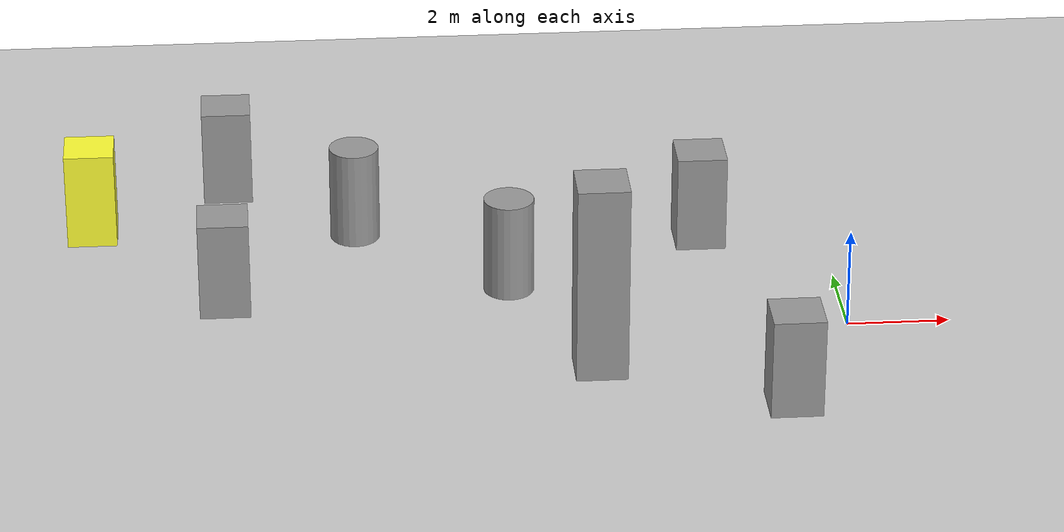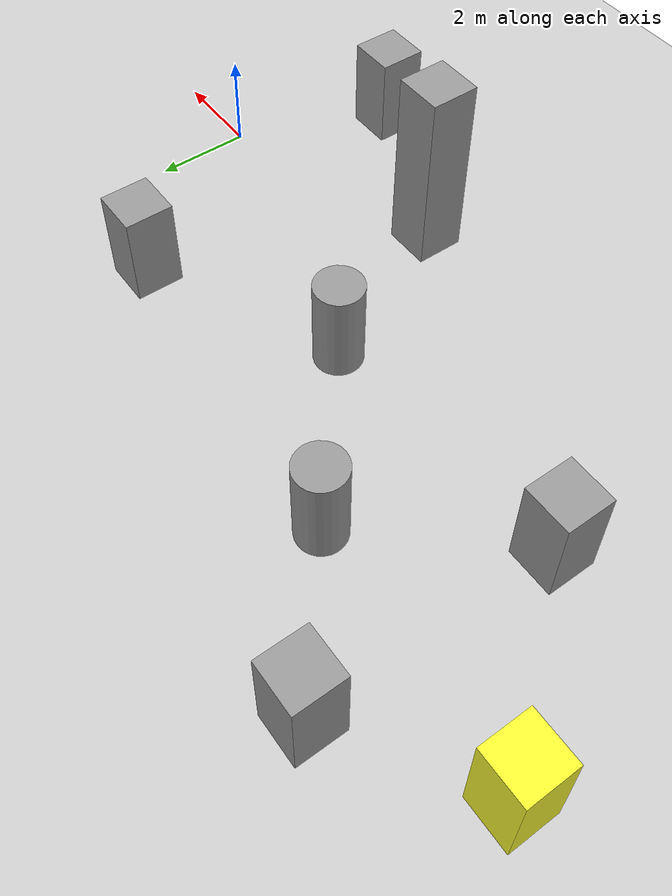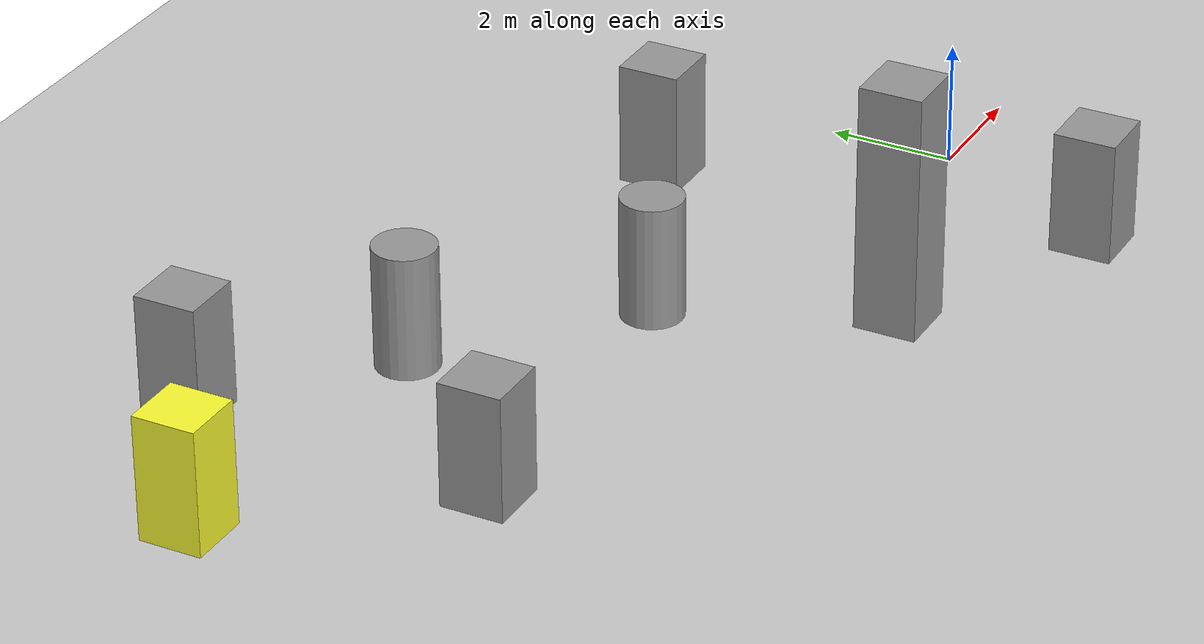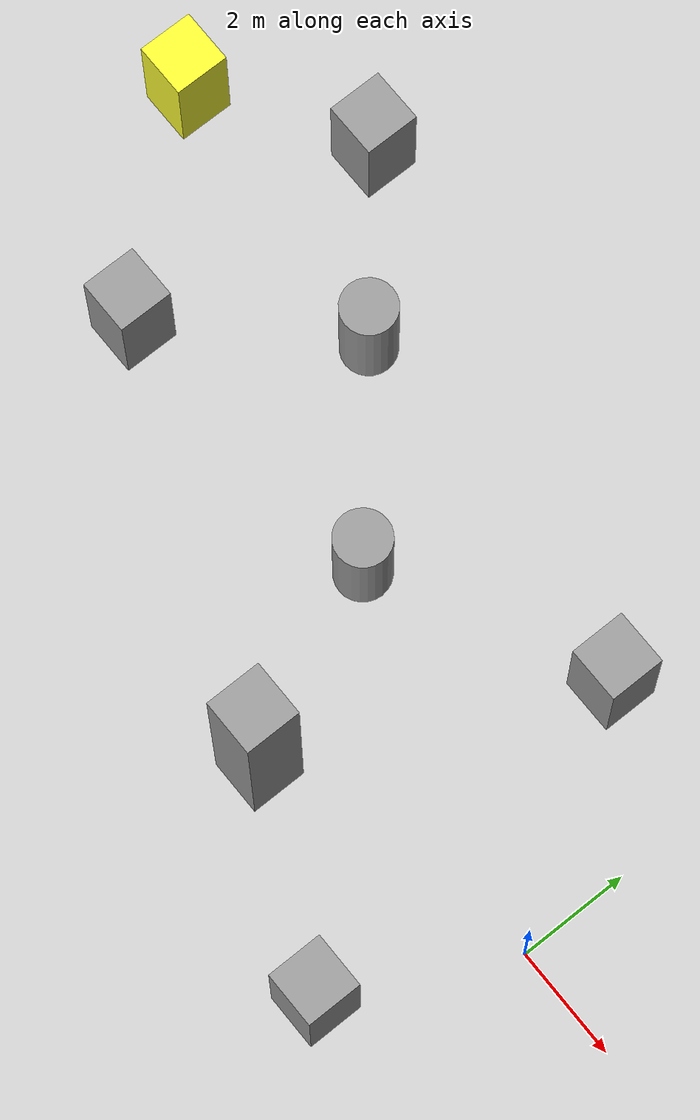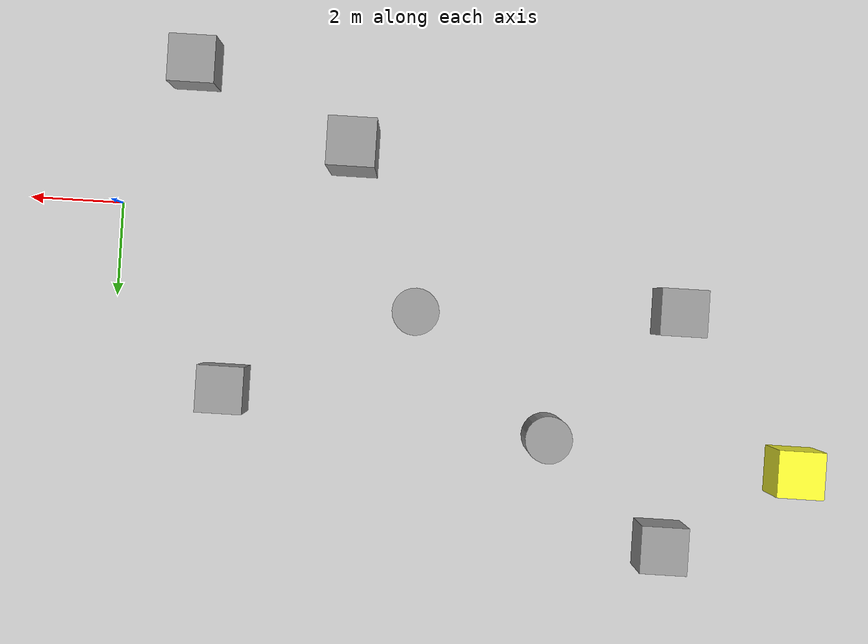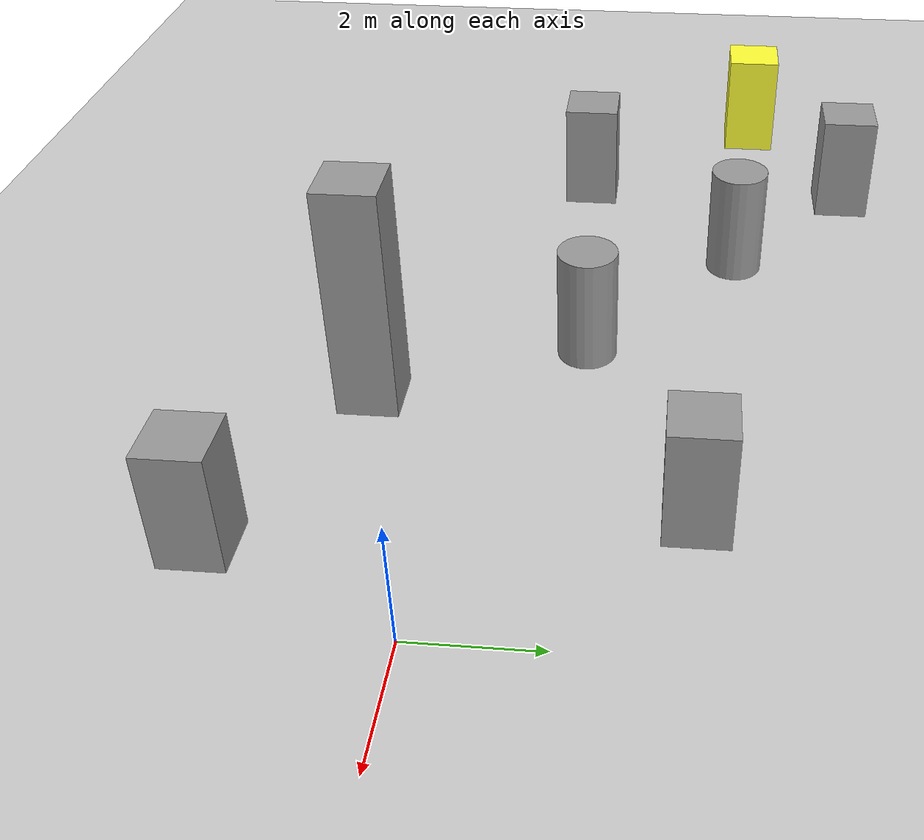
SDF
<sdf version="1.7">
 <world name="default">
  <model name="ground_plane">
   <static>1</static>
   <link name="link">
    <collision name="collision">
     <geometry><plane><normal>0 0 1</normal><size>100 100</size></plane></geometry>
     <surface>
      <contact><collide_bitmask>65535</collide_bitmask></contact>
      <friction><ode><mu>100</mu><mu2>50</mu2></ode></friction>
     </surface>
    </collision>
    <visual name="visual">
     <cast_shadows>0</cast_shadows>
     <geometry><plane><normal>0 0 1</normal><size>100 100</size></plane></geometry>
     <material>
      <script><uri>file://media/materials/scripts/gazebo.material</uri><name>Gazebo/Grey</name></script>
     </material>
    </visual>
   </link>
  </model>
  <model name="box_Z_2m_clone_0_clone_0_clone_0">
   <link name="link">
    <inertial>
     <mass>1</mass>
     <inertia>
      <ixx>0.166667</ixx>
      <ixy>0</ixy>
      <ixz>0</ixz>
      <iyy>0.166667</iyy>
      <iyz>0</iyz>
      <izz>0.166667</izz>
     </inertia>
    </inertial>
    <visual name="visual">
     <geometry><box><size>1 1 2</size></box></geometry>
     <material>
      <script><name>Gazebo/Grey</name><uri>file://media/materials/scripts/gazebo.material</uri></script>
      <shader type="pixel"><normal_map>__default__</normal_map></shader>
      <ambient>0.3 0.3 0.3 1</ambient>
      <diffuse>0.7 0.7 0.7 1</diffuse>
      <specular>0.01 0.01 0.01 1</specular>
      <emissive>0 0 0 1</emissive>
     </material>
    </visual>
    <collision name="collision">
     <geometry><box><size>1 1 2</size></box></geometry>
     <surface>
      <friction>
       <ode><mu>1</mu><mu2>1</mu2><fdir1>0 0 0</fdir1><slip1>0</slip1><slip2>0</slip2></ode>
       <torsional>
        <coefficient>1</coefficient>
        <patch_radius>0</patch_radius>
        <surface_radius>0</surface_radius>
        <use_patch_radius>1</use_patch_radius>
        <ode><slip>0</slip></ode>
       </torsional>
      </friction>
      <bounce><restitution_coefficient>0</restitution_coefficient><threshold>1e+06</threshold></bounce>
      <contact>
       <collide_without_contact>0</collide_without_contact>
       <collide_without_contact_bitmask>1</collide_without_contact_bitmask>
       <collide_bitmask>1</collide_bitmask>
       <ode>
        <soft_cfm>0</soft_cfm>
        <soft_erp>0.2</soft_erp>
        <kp>1e+13</kp>
        <kd>1</kd>
        <max_vel>0.01</max_vel>
        <min_depth>0</min_depth>
       </ode>
       <bullet>
        <split_impulse>1</split_impulse>
        <split_impulse_penetration_threshold>-0.01</split_impulse_penetration_threshold>
        <soft_cfm>0</soft_cfm>
        <soft_erp>0.2</soft_erp>
        <kp>1e+13</kp>
        <kd>1</kd>
       </bullet>
      </contact>
     </surface>
    </collision>
   </link>
   <static>0</static>
   <pose>-1.48121 -3.05259 1 -1e-06 -1e-06 0.000334</pose>
  </model>
  <model name="box_Z_2m_clone_0_clone_0_clone_1">
   <link name="link">
    <inertial>
     <mass>1</mass>
     <inertia>
      <ixx>0.166667</ixx>
      <ixy>0</ixy>
      <ixz>0</ixz>
      <iyy>0.166667</iyy>
      <iyz>0</iyz>
      <izz>0.166667</izz>
     </inertia>
    </inertial>
    <visual name="visual">
     <geometry><box><size>1 1 2</size></box></geometry>
     <material>
      <script><name>Gazebo/Grey</name><uri>file://media/materials/scripts/gazebo.material</uri></script>
      <shader type="pixel"><normal_map>__default__</normal_map></shader>
      <ambient>0.3 0.3 0.3 1</ambient>
      <diffuse>0.7 0.7 0.7 1</diffuse>
      <specular>0.01 0.01 0.01 1</specular>
      <emissive>0 0 0 1</emissive>
     </material>
    </visual>
    <collision name="collision">
     <geometry><box><size>1 1 2</size></box></geometry>
     <surface>
      <friction>
       <ode><mu>1</mu><mu2>1</mu2><fdir1>0 0 0</fdir1><slip1>0</slip1><slip2>0</slip2></ode>
       <torsional>
        <coefficient>1</coefficient>
        <patch_radius>0</patch_radius>
        <surface_radius>0</surface_radius>
        <use_patch_radius>1</use_patch_radius>
        <ode><slip>0</slip></ode>
       </torsional>
      </friction>
      <bounce><restitution_coefficient>0</restitution_coefficient><threshold>1e+06</threshold></bounce>
      <contact>
       <collide_without_contact>0</collide_without_contact>
       <collide_without_contact_bitmask>1</collide_without_contact_bitmask>
       <collide_bitmask>1</collide_bitmask>
       <ode>
        <soft_cfm>0</soft_cfm>
        <soft_erp>0.2</soft_erp>
        <kp>1e+13</kp>
        <kd>1</kd>
        <max_vel>0.01</max_vel>
        <min_depth>0</min_depth>
       </ode>
       <bullet>
        <split_impulse>1</split_impulse>
        <split_impulse_penetration_threshold>-0.01</split_impulse_penetration_threshold>
        <soft_cfm>0</soft_cfm>
        <soft_erp>0.2</soft_erp>
        <kp>1e+13</kp>
        <kd>1</kd>
       </bullet>
      </contact>
     </surface>
    </collision>
   </link>
   <static>0</static>
   <pose>-2.49504 3.85071 1 -1e-06 -1e-06 0.000334</pose>
  </model>
  <model name="box_Z_2m_clone_0_clone_0_clone_2">
   <link name="link">
    <inertial>
     <mass>1</mass>
     <inertia>
      <ixx>0.166667</ixx>
      <ixy>0</ixy>
      <ixz>0</ixz>
      <iyy>0.166667</iyy>
      <iyz>0</iyz>
      <izz>0.166667</izz>
     </inertia>
    </inertial>
    <visual name="visual">
     <geometry><box><size>1 1 2</size></box></geometry>
     <material>
      <script><name>Gazebo/Grey</name><uri>file://media/materials/scripts/gazebo.material</uri></script>
      <shader type="pixel"><normal_map>__default__</normal_map></shader>
      <ambient>0.3 0.3 0.3 1</ambient>
      <diffuse>0.7 0.7 0.7 1</diffuse>
      <specular>0.01 0.01 0.01 1</specular>
      <emissive>0 0 0 1</emissive>
     </material>
    </visual>
    <collision name="collision">
     <geometry><box><size>1 1 2</size></box></geometry>
     <surface>
      <friction>
       <ode><mu>1</mu><mu2>1</mu2><fdir1>0 0 0</fdir1><slip1>0</slip1><slip2>0</slip2></ode>
       <torsional>
        <coefficient>1</coefficient>
        <patch_radius>0</patch_radius>
        <surface_radius>0</surface_radius>
        <use_patch_radius>1</use_patch_radius>
        <ode><slip>0</slip></ode>
       </torsional>
      </friction>
      <bounce><restitution_coefficient>0</restitution_coefficient><threshold>1e+06</threshold></bounce>
      <contact>
       <collide_without_contact>0</collide_without_contact>
       <collide_without_contact_bitmask>1</collide_without_contact_bitmask>
       <collide_bitmask>1</collide_bitmask>
       <ode>
        <soft_cfm>0</soft_cfm>
        <soft_erp>0.2</soft_erp>
        <kp>1e+13</kp>
        <kd>1</kd>
        <max_vel>0.01</max_vel>
        <min_depth>0</min_depth>
       </ode>
       <bullet>
        <split_impulse>1</split_impulse>
        <split_impulse_penetration_threshold>-0.01</split_impulse_penetration_threshold>
        <soft_cfm>0</soft_cfm>
        <soft_erp>0.2</soft_erp>
        <kp>1e+13</kp>
        <kd>1</kd>
       </bullet>
      </contact>
     </surface>
    </collision>
   </link>
   <static>0</static>
   <pose>-12.1453 1.63101 1 -1e-06 -1e-06 0.000334</pose>
  </model>
  <model name="box_Z_2m_clone_0_clone_0_clone_3">
   <link name="link">
    <inertial>
     <mass>1</mass>
     <inertia>
      <ixx>0.166667</ixx>
      <ixy>0</ixy>
      <ixz>0</ixz>
      <iyy>0.166667</iyy>
      <iyz>0</iyz>
      <izz>0.166667</izz>
     </inertia>
    </inertial>
    <visual name="visual">
     <geometry><box><size>1 1 2</size></box></geometry>
     <material>
      <script><name>Gazebo/Grey</name><uri>file://media/materials/scripts/gazebo.material</uri></script>
      <shader type="pixel"><normal_map>__default__</normal_map></shader>
      <ambient>0.3 0.3 0.3 1</ambient>
      <diffuse>0.7 0.7 0.7 1</diffuse>
      <specular>0.01 0.01 0.01 1</specular>
      <emissive>0 0 0 1</emissive>
     </material>
    </visual>
    <collision name="collision">
     <geometry><box><size>1 1 2</size></box></geometry>
     <surface>
      <friction>
       <ode><mu>1</mu><mu2>1</mu2><fdir1>0 0 0</fdir1><slip1>0</slip1><slip2>0</slip2></ode>
       <torsional>
        <coefficient>1</coefficient>
        <patch_radius>0</patch_radius>
        <surface_radius>0</surface_radius>
        <use_patch_radius>1</use_patch_radius>
        <ode><slip>0</slip></ode>
       </torsional>
      </friction>
      <bounce><restitution_coefficient>0</restitution_coefficient><threshold>1e+06</threshold></bounce>
      <contact>
       <collide_without_contact>0</collide_without_contact>
       <collide_without_contact_bitmask>1</collide_without_contact_bitmask>
       <collide_bitmask>1</collide_bitmask>
       <ode>
        <soft_cfm>0</soft_cfm>
        <soft_erp>0.2</soft_erp>
        <kp>1e+13</kp>
        <kd>1</kd>
        <max_vel>0.01</max_vel>
        <min_depth>0</min_depth>
       </ode>
       <bullet>
        <split_impulse>1</split_impulse>
        <split_impulse_penetration_threshold>-0.01</split_impulse_penetration_threshold>
        <soft_cfm>0</soft_cfm>
        <soft_erp>0.2</soft_erp>
        <kp>1e+13</kp>
        <kd>1</kd>
       </bullet>
      </contact>
     </surface>
    </collision>
   </link>
   <static>0</static>
   <pose>-12.0297 6.64335 1 -1e-06 -1e-06 0.000334</pose>
  </model>
  <model name="cylinder_2m_clone">
   <link name="link">
    <inertial>
     <mass>1</mass>
     <inertia><ixx>0.145833</ixx><ixy>0</ixy><ixz>0</ixz><iyy>0.145833</iyy><iyz>0</iyz><izz>0.125</izz></inertia>
    </inertial>
    <visual name="visual">
     <geometry><cylinder><radius>0.5</radius><length>2</length></cylinder></geometry>
     <material>
      <script><name>Gazebo/Grey</name><uri>file://media/materials/scripts/gazebo.material</uri></script>
      <shader type="pixel"><normal_map>__default__</normal_map></shader>
      <ambient>0.3 0.3 0.3 1</ambient>
      <diffuse>0.7 0.7 0.7 1</diffuse>
      <specular>0.01 0.01 0.01 1</specular>
      <emissive>0 0 0 1</emissive>
     </material>
    </visual>
    <collision name="collision">
     <geometry><cylinder><radius>0.5</radius><length>2</length></cylinder></geometry>
     <surface>
      <friction>
       <ode><mu>1</mu><mu2>1</mu2><fdir1>0 0 0</fdir1><slip1>0</slip1><slip2>0</slip2></ode>
       <torsional>
        <coefficient>1</coefficient>
        <patch_radius>0</patch_radius>
        <surface_radius>0</surface_radius>
        <use_patch_radius>1</use_patch_radius>
        <ode><slip>0</slip></ode>
       </torsional>
      </friction>
      <bounce><restitution_coefficient>0</restitution_coefficient><threshold>1e+06</threshold></bounce>
      <contact>
       <collide_without_contact>0</collide_without_contact>
       <collide_without_contact_bitmask>1</collide_without_contact_bitmask>
       <collide_bitmask>1</collide_bitmask>
       <ode>
        <soft_cfm>0</soft_cfm>
        <soft_erp>0.2</soft_erp>
        <kp>1e+13</kp>
        <kd>1</kd>
        <max_vel>0.01</max_vel>
        <min_depth>0</min_depth>
       </ode>
       <bullet>
        <split_impulse>1</split_impulse>
        <split_impulse_penetration_threshold>-0.01</split_impulse_penetration_threshold>
        <soft_cfm>0</soft_cfm>
        <soft_erp>0.2</soft_erp>
        <kp>1e+13</kp>
        <kd>1</kd>
       </bullet>
      </contact>
     </surface>
    </collision>
   </link>
   <static>0</static>
   <pose>-6.50716 1.9611 0.999999 0 -0 -7e-06</pose>
  </model>
  <model name="cylinder_2m_clone_clone">
   <link name="link">
    <inertial>
     <mass>1</mass>
     <inertia><ixx>0.145833</ixx><ixy>0</ixy><ixz>0</ixz><iyy>0.145833</iyy><iyz>0</iyz><izz>0.125</izz></inertia>
    </inertial>
    <visual name="visual">
     <geometry><cylinder><radius>0.5</radius><length>2</length></cylinder></geometry>
     <material>
      <script><name>Gazebo/Grey</name><uri>file://media/materials/scripts/gazebo.material</uri></script>
      <shader type="pixel"><normal_map>__default__</normal_map></shader>
      <ambient>0.3 0.3 0.3 1</ambient>
      <diffuse>0.7 0.7 0.7 1</diffuse>
      <specular>0.01 0.01 0.01 1</specular>
      <emissive>0 0 0 1</emissive>
     </material>
    </visual>
    <collision name="collision">
     <geometry><cylinder><radius>0.5</radius><length>2</length></cylinder></geometry>
     <surface>
      <friction>
       <ode><mu>1</mu><mu2>1</mu2><fdir1>0 0 0</fdir1><slip1>0</slip1><slip2>0</slip2></ode>
       <torsional>
        <coefficient>1</coefficient>
        <patch_radius>0</patch_radius>
        <surface_radius>0</surface_radius>
        <use_patch_radius>1</use_patch_radius>
        <ode><slip>0</slip></ode>
       </torsional>
      </friction>
      <bounce><restitution_coefficient>0</restitution_coefficient><threshold>1e+06</threshold></bounce>
      <contact>
       <collide_without_contact>0</collide_without_contact>
       <collide_without_contact_bitmask>1</collide_without_contact_bitmask>
       <collide_bitmask>1</collide_bitmask>
       <ode>
        <soft_cfm>0</soft_cfm>
        <soft_erp>0.2</soft_erp>
        <kp>1e+13</kp>
        <kd>1</kd>
        <max_vel>0.01</max_vel>
        <min_depth>0</min_depth>
       </ode>
       <bullet>
        <split_impulse>1</split_impulse>
        <split_impulse_penetration_threshold>-0.01</split_impulse_penetration_threshold>
        <soft_cfm>0</soft_cfm>
        <soft_erp>0.2</soft_erp>
        <kp>1e+13</kp>
        <kd>1</kd>
       </bullet>
      </contact>
     </surface>
    </collision>
   </link>
   <static>0</static>
   <pose>-9.46545 4.47584 0.999999 0 -0 -7e-06</pose>
  </model>
  <model name="box_Z_2m_garbage">
   <link name="link">
    <inertial>
     <mass>1</mass>
     <inertia>
      <ixx>0.166667</ixx>
      <ixy>0</ixy>
      <ixz>0</ixz>
      <iyy>0.166667</iyy>
      <iyz>0</iyz>
      <izz>0.166667</izz>
     </inertia>
    </inertial>
    <visual name="visual">
     <geometry><box><size>1 1 2</size></box></geometry>
     <material>
      <script><name>Gazebo/Grey</name><uri>file://media/materials/scripts/gazebo.material</uri></script>
      <shader type="pixel"><normal_map>__default__</normal_map></shader>
      <ambient>1 1 0.2 1</ambient>
      <diffuse>0.7 0.7 0.7 1</diffuse>
      <specular>0.01 0.01 0.01 1</specular>
      <emissive>0 0 0 1</emissive>
     </material>
    </visual>
    <collision name="collision">
     <geometry><box><size>1 1 2</size></box></geometry>
     <surface>
      <friction>
       <ode><mu>1</mu><mu2>1</mu2><fdir1>0 0 0</fdir1><slip1>0</slip1><slip2>0</slip2></ode>
       <torsional>
        <coefficient>1</coefficient>
        <patch_radius>0</patch_radius>
        <surface_radius>0</surface_radius>
        <use_patch_radius>1</use_patch_radius>
        <ode><slip>0</slip></ode>
       </torsional>
      </friction>
      <bounce><restitution_coefficient>0</restitution_coefficient><threshold>1e+06</threshold></bounce>
      <contact>
       <collide_without_contact>0</collide_without_contact>
       <collide_without_contact_bitmask>1</collide_without_contact_bitmask>
       <collide_bitmask>1</collide_bitmask>
       <ode>
        <soft_cfm>0</soft_cfm>
        <soft_erp>0.2</soft_erp>
        <kp>1e+13</kp>
        <kd>1</kd>
        <max_vel>0.01</max_vel>
        <min_depth>0</min_depth>
       </ode>
       <bullet>
        <split_impulse>1</split_impulse>
        <split_impulse_penetration_threshold>-0.01</split_impulse_penetration_threshold>
        <soft_cfm>0</soft_cfm>
        <soft_erp>0.2</soft_erp>
        <kp>1e+13</kp>
        <kd>1</kd>
       </bullet>
      </contact>
     </surface>
    </collision>
   </link>
   <static>0</static>
   <pose>-14.8032 4.88108 1 1e-06 -1e-06 -0.00276</pose>
  </model>
  <model name="Square_column_clone">
   <link name="link">
    <inertial>
     <mass>1</mass>
     <inertia>
      <ixx>0.166667</ixx>
      <ixy>0</ixy>
      <ixz>0</ixz>
      <iyy>0.166667</iyy>
      <iyz>0</iyz>
      <izz>0.166667</izz>
     </inertia>
    </inertial>
    <visual name="visual">
     <geometry><box><size>1 1 4</size></box></geometry>
     <material>
      <script><name>Gazebo/Grey</name><uri>file://media/materials/scripts/gazebo.material</uri></script>
      <shader type="pixel"><normal_map>__default__</normal_map></shader>
      <ambient>0.3 0.3 0.3 1</ambient>
      <diffuse>0.3 0.3 0.3 1</diffuse>
      <specular>0.01 0.01 0.01 1</specular>
      <emissive>0 0 0 1</emissive>
     </material>
    </visual>
    <collision name="collision">
     <geometry><box><size>1 1 4</size></box></geometry>
     <surface>
      <friction>
       <ode><mu>1</mu><mu2>1</mu2><fdir1>0 0 0</fdir1><slip1>0</slip1><slip2>0</slip2></ode>
       <torsional>
        <coefficient>1</coefficient>
        <patch_radius>0</patch_radius>
        <surface_radius>0</surface_radius>
        <use_patch_radius>1</use_patch_radius>
        <ode><slip>0</slip></ode>
       </torsional>
      </friction>
      <bounce><restitution_coefficient>0</restitution_coefficient><threshold>1e+06</threshold></bounce>
      <contact>
       <collide_without_contact>0</collide_without_contact>
       <collide_without_contact_bitmask>1</collide_without_contact_bitmask>
       <collide_bitmask>1</collide_bitmask>
       <ode>
        <soft_cfm>0</soft_cfm>
        <soft_erp>0.2</soft_erp>
        <kp>1e+13</kp>
        <kd>1</kd>
        <max_vel>0.01</max_vel>
        <min_depth>0</min_depth>
       </ode>
       <bullet>
        <split_impulse>1</split_impulse>
        <split_impulse_penetration_threshold>-0.01</split_impulse_penetration_threshold>
        <soft_cfm>0</soft_cfm>
        <soft_erp>0.2</soft_erp>
        <kp>1e+13</kp>
        <kd>1</kd>
       </bullet>
      </contact>
     </surface>
    </collision>
   </link>
   <static>0</static>
   <pose>-5.00009 -1.38487 2 -0 1e-06 0.00015</pose>
  </model>
 </world>
</sdf>
